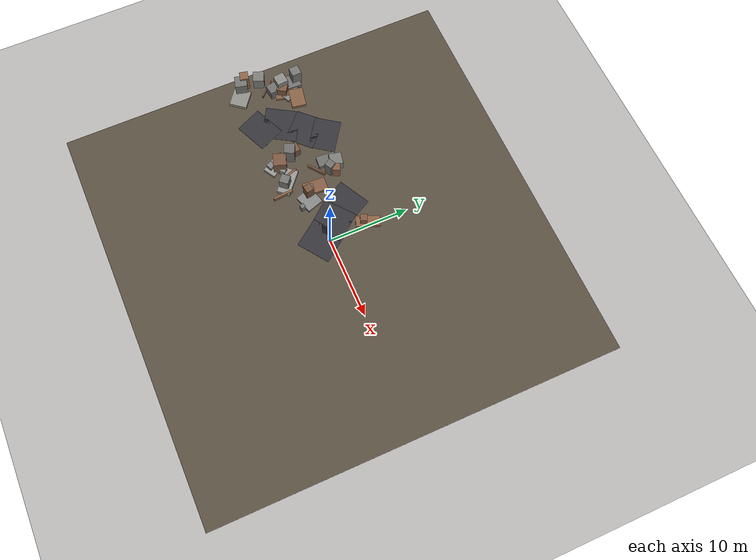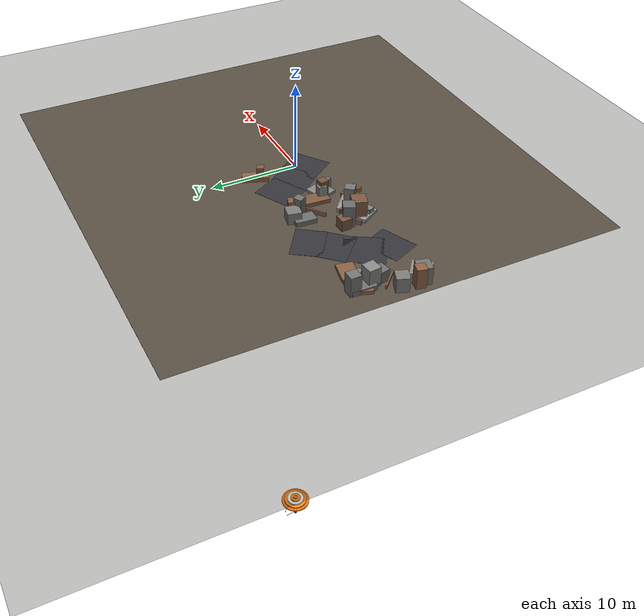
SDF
<sdf version="1.6">
 <world name="navitas_arena">
  <model name="ground_plane">
   <static>true</static>
   <link name="link">
    <collision name="collision">
     <geometry><plane><normal>0 0 1</normal><size>400 400</size></plane></geometry>
     <surface><friction><ode><mu>0.750</mu><mu2>0.750</mu2></ode></friction></surface>
    </collision>
    <visual name="visual">
     <cast_shadows>false</cast_shadows>
     <geometry><plane><normal>0 0 1</normal><size>400 400</size></plane></geometry>
     <material><ambient>0.150 0.140 0.130 1</ambient><diffuse>0.150 0.140 0.130 1</diffuse></material>
    </visual>
   </link>
  </model>
  <model name="gd_orta">
   <static>true</static>
   <pose>0.000 0.000 0.010 0 0 0.000</pose>
   <link name="link">
    <collision name="col"><geometry><box><size>50.000 50.000 0.020</size></box></geometry></collision>
    <visual name="vis">
     <geometry><box><size>50.000 50.000 0.020</size></box></geometry>
     <material><ambient>0.34 0.30 0.25 1</ambient><diffuse>0.34 0.30 0.25 1</diffuse></material>
    </visual>
   </link>
  </model>
  <model name="road_orta_1_14">
   <static>true</static>
   <pose>-17.144 -2.167 0.040 0 0 1.992</pose>
   <link name="link">
    <collision name="col"><geometry><box><size>3.456 4.250 0.020</size></box></geometry></collision>
    <visual name="vis">
     <geometry><box><size>3.456 4.250 0.020</size></box></geometry>
     <material><ambient>0.20 0.20 0.22 1</ambient><diffuse>0.20 0.20 0.22 1</diffuse></material>
    </visual>
   </link>
  </model>
  <model name="road_orta_1_15">
   <static>true</static>
   <pose>-16.786 0.500 0.040 0 0 1.040</pose>
   <link name="link">
    <collision name="col"><geometry><box><size>4.378 4.250 0.020</size></box></geometry></collision>
    <visual name="vis">
     <geometry><box><size>4.378 4.250 0.020</size></box></geometry>
     <material><ambient>0.20 0.20 0.22 1</ambient><diffuse>0.20 0.20 0.22 1</diffuse></material>
    </visual>
   </link>
  </model>
  <model name="road_orta_1_16">
   <static>true</static>
   <pose>-14.947 3.000 0.040 0 0 0.806</pose>
   <link name="link">
    <collision name="col"><geometry><box><size>3.672 4.250 0.020</size></box></geometry></collision>
    <visual name="vis">
     <geometry><box><size>3.672 4.250 0.020</size></box></geometry>
     <material><ambient>0.20 0.20 0.22 1</ambient><diffuse>0.20 0.20 0.22 1</diffuse></material>
    </visual>
   </link>
  </model>
  <model name="road_orta_1_17">
   <static>true</static>
   <pose>-13.290 5.000 0.040 0 0 0.962</pose>
   <link name="link">
    <collision name="col"><geometry><box><size>3.337 4.250 0.020</size></box></geometry></collision>
    <visual name="vis">
     <geometry><box><size>3.337 4.250 0.020</size></box></geometry>
     <material><ambient>0.20 0.20 0.22 1</ambient><diffuse>0.20 0.20 0.22 1</diffuse></material>
    </visual>
   </link>
  </model>
  <model name="road_orta_2_9">
   <static>true</static>
   <pose>-0.436 -1.000 0.040 0 0 2.198</pose>
   <link name="link">
    <collision name="col"><geometry><box><size>3.782 4.250 0.020</size></box></geometry></collision>
    <visual name="vis">
     <geometry><box><size>3.782 4.250 0.020</size></box></geometry>
     <material><ambient>0.20 0.20 0.22 1</ambient><diffuse>0.20 0.20 0.22 1</diffuse></material>
    </visual>
   </link>
  </model>
  <model name="road_orta_2_10">
   <static>true</static>
   <pose>-2.240 1.333 0.040 0 0 2.258</pose>
   <link name="link">
    <collision name="col"><geometry><box><size>3.919 4.250 0.020</size></box></geometry></collision>
    <visual name="vis">
     <geometry><box><size>3.919 4.250 0.020</size></box></geometry>
     <material><ambient>0.20 0.20 0.22 1</ambient><diffuse>0.20 0.20 0.22 1</diffuse></material>
    </visual>
   </link>
  </model>
  <model name="road_orta_2_11">
   <static>true</static>
   <pose>-3.825 3.667 0.040 0 0 2.064</pose>
   <link name="link">
    <collision name="col"><geometry><box><size>3.549 4.250 0.020</size></box></geometry></collision>
    <visual name="vis">
     <geometry><box><size>3.549 4.250 0.020</size></box></geometry>
     <material><ambient>0.20 0.20 0.22 1</ambient><diffuse>0.20 0.20 0.22 1</diffuse></material>
    </visual>
   </link>
  </model>
  <model name="deb_orta_5">
   <static>true</static>
   <pose>-22.137 -2.837 0.236 0 0 2.482</pose>
   <link name="link">
    <collision name="col"><geometry><box><size>2.312 2.183 0.472</size></box></geometry></collision>
    <visual name="vis">
     <geometry><box><size>2.312 2.183 0.472</size></box></geometry>
     <material><ambient>0.54 0.54 0.52 1</ambient><diffuse>0.54 0.54 0.52 1</diffuse></material>
    </visual>
   </link>
  </model>
  <model name="deb_orta_13">
   <static>true</static>
   <pose>-23.464 0.221 0.840 0 0 1.223</pose>
   <link name="link">
    <collision name="col"><geometry><box><size>1.376 1.376 1.679</size></box></geometry></collision>
    <visual name="vis">
     <geometry><box><size>1.376 1.376 1.679</size></box></geometry>
     <material><ambient>0.47 0.47 0.46 1</ambient><diffuse>0.47 0.47 0.46 1</diffuse></material>
    </visual>
   </link>
  </model>
  <model name="deb_orta_15">
   <static>true</static>
   <pose>-21.774 3.699 0.298 0 0 1.542</pose>
   <link name="link">
    <collision name="col"><geometry><box><size>2.696 1.844 0.597</size></box></geometry></collision>
    <visual name="vis">
     <geometry><box><size>2.696 1.844 0.597</size></box></geometry>
     <material><ambient>0.43 0.43 0.43 1</ambient><diffuse>0.43 0.43 0.43 1</diffuse></material>
    </visual>
   </link>
  </model>
  <model name="deb_orta_22">
   <static>true</static>
   <pose>-12.104 -0.181 1.240 0 0 1.145</pose>
   <link name="link">
    <collision name="col"><geometry><box><size>1.293 1.293 2.480</size></box></geometry></collision>
    <visual name="vis">
     <geometry><box><size>1.293 1.293 2.480</size></box></geometry>
     <material><ambient>0.41 0.41 0.40 1</ambient><diffuse>0.41 0.41 0.40 1</diffuse></material>
    </visual>
   </link>
  </model>
  <model name="deb_orta_24">
   <static>true</static>
   <pose>-23.400 -2.149 1.035 0 0 2.879</pose>
   <link name="link">
    <collision name="col"><geometry><box><size>1.496 1.496 2.069</size></box></geometry></collision>
    <visual name="vis">
     <geometry><box><size>1.496 1.496 2.069</size></box></geometry>
     <material><ambient>0.44 0.44 0.43 1</ambient><diffuse>0.44 0.44 0.43 1</diffuse></material>
    </visual>
   </link>
  </model>
  <model name="deb_orta_27">
   <static>true</static>
   <pose>-11.625 -2.870 0.459 0 0 0.429</pose>
   <link name="link">
    <collision name="col"><geometry><box><size>0.763 0.763 0.918</size></box></geometry></collision>
    <visual name="vis">
     <geometry><box><size>0.763 0.763 0.918</size></box></geometry>
     <material><ambient>0.49 0.49 0.48 1</ambient><diffuse>0.49 0.49 0.48 1</diffuse></material>
    </visual>
   </link>
  </model>
  <model name="deb_orta_36">
   <static>true</static>
   <pose>-19.397 3.827 0.227 0 0 2.953</pose>
   <link name="link">
    <collision name="col"><geometry><box><size>2.503 1.797 0.453</size></box></geometry></collision>
    <visual name="vis">
     <geometry><box><size>2.503 1.797 0.453</size></box></geometry>
     <material><ambient>0.52 0.37 0.26 1</ambient><diffuse>0.52 0.37 0.26 1</diffuse></material>
    </visual>
   </link>
  </model>
  <model name="deb_orta_41">
   <static>true</static>
   <pose>-0.358 5.063 0.259 0 0 1.212</pose>
   <link name="link">
    <collision name="col"><geometry><box><size>2.947 1.291 0.519</size></box></geometry></collision>
    <visual name="vis">
     <geometry><box><size>2.947 1.291 0.519</size></box></geometry>
     <material><ambient>0.52 0.37 0.26 1</ambient><diffuse>0.52 0.37 0.26 1</diffuse></material>
    </visual>
   </link>
  </model>
  <model name="deb_orta_43">
   <static>true</static>
   <pose>-11.558 -2.389 0.199 0 0 2.107</pose>
   <link name="link">
    <collision name="col"><geometry><box><size>2.421 1.606 0.398</size></box></geometry></collision>
    <visual name="vis">
     <geometry><box><size>2.421 1.606 0.398</size></box></geometry>
     <material><ambient>0.57 0.57 0.56 1</ambient><diffuse>0.57 0.57 0.56 1</diffuse></material>
    </visual>
   </link>
  </model>
  <model name="deb_orta_57">
   <static>true</static>
   <pose>-12.312 -0.735 0.257 0 0 0.644</pose>
   <link name="link">
    <collision name="col"><geometry><box><size>1.704 0.160 0.514</size></box></geometry></collision>
    <visual name="vis">
     <geometry><box><size>1.704 0.160 0.514</size></box></geometry>
     <material><ambient>0.54 0.38 0.27 1</ambient><diffuse>0.54 0.38 0.27 1</diffuse></material>
    </visual>
   </link>
  </model>
  <model name="deb_orta_62">
   <static>true</static>
   <pose>-9.809 3.743 0.279 0 0 1.507</pose>
   <link name="link">
    <collision name="col"><geometry><box><size>2.340 1.439 0.559</size></box></geometry></collision>
    <visual name="vis">
     <geometry><box><size>2.340 1.439 0.559</size></box></geometry>
     <material><ambient>0.42 0.42 0.41 1</ambient><diffuse>0.42 0.42 0.41 1</diffuse></material>
    </visual>
   </link>
  </model>
  <model name="deb_orta_67">
   <static>true</static>
   <pose>-20.811 3.122 0.182 0 0 2.029</pose>
   <link name="link">
    <collision name="col"><geometry><box><size>2.181 2.175 0.364</size></box></geometry></collision>
    <visual name="vis">
     <geometry><box><size>2.181 2.175 0.364</size></box></geometry>
     <material><ambient>0.50 0.50 0.49 1</ambient><diffuse>0.50 0.50 0.49 1</diffuse></material>
    </visual>
   </link>
  </model>
  <model name="deb_orta_93">
   <static>true</static>
   <pose>-7.925 4.222 0.837 0 0 2.783</pose>
   <link name="link">
    <collision name="col"><geometry><box><size>0.923 0.923 1.674</size></box></geometry></collision>
    <visual name="vis">
     <geometry><box><size>0.923 0.923 1.674</size></box></geometry>
     <material><ambient>0.52 0.36 0.26 1</ambient><diffuse>0.52 0.36 0.26 1</diffuse></material>
    </visual>
   </link>
  </model>
  <model name="deb_orta_95">
   <static>true</static>
   <pose>-20.998 2.484 0.743 0 0 0.968</pose>
   <link name="link">
    <collision name="col"><geometry><box><size>1.255 1.255 1.485</size></box></geometry></collision>
    <visual name="vis">
     <geometry><box><size>1.255 1.255 1.485</size></box></geometry>
     <material><ambient>0.47 0.33 0.24 1</ambient><diffuse>0.47 0.33 0.24 1</diffuse></material>
    </visual>
   </link>
  </model>
  <model name="deb_orta_99">
   <static>true</static>
   <pose>-23.545 -2.237 0.336 0 0 1.798</pose>
   <link name="link">
    <collision name="col"><geometry><box><size>0.441 0.441 0.673</size></box></geometry></collision>
    <visual name="vis">
     <geometry><box><size>0.441 0.441 0.673</size></box></geometry>
     <material><ambient>0.45 0.45 0.45 1</ambient><diffuse>0.45 0.45 0.45 1</diffuse></material>
    </visual>
   </link>
  </model>
  <model name="deb_orta_104">
   <static>true</static>
   <pose>-9.770 -1.344 0.269 0 0 1.873</pose>
   <link name="link">
    <collision name="col"><geometry><box><size>2.380 0.257 0.538</size></box></geometry></collision>
    <visual name="vis">
     <geometry><box><size>2.380 0.257 0.538</size></box></geometry>
     <material><ambient>0.51 0.36 0.26 1</ambient><diffuse>0.51 0.36 0.26 1</diffuse></material>
    </visual>
   </link>
  </model>
  <model name="deb_orta_105">
   <static>true</static>
   <pose>-11.310 -1.786 1.100 0 0 1.247</pose>
   <link name="link">
    <collision name="col"><geometry><box><size>1.593 1.593 2.200</size></box></geometry></collision>
    <visual name="vis">
     <geometry><box><size>1.593 1.593 2.200</size></box></geometry>
     <material><ambient>0.47 0.33 0.24 1</ambient><diffuse>0.47 0.33 0.24 1</diffuse></material>
    </visual>
   </link>
  </model>
  <model name="deb_orta_121">
   <static>true</static>
   <pose>-21.663 2.563 1.122 0 0 1.683</pose>
   <link name="link">
    <collision name="col"><geometry><box><size>1.354 1.354 2.245</size></box></geometry></collision>
    <visual name="vis">
     <geometry><box><size>1.354 1.354 2.245</size></box></geometry>
     <material><ambient>0.53 0.53 0.52 1</ambient><diffuse>0.53 0.53 0.52 1</diffuse></material>
    </visual>
   </link>
  </model>
  <model name="deb_orta_123">
   <static>true</static>
   <pose>-22.018 4.688 1.142 0 0 0.030</pose>
   <link name="link">
    <collision name="col"><geometry><box><size>1.197 1.197 2.284</size></box></geometry></collision>
    <visual name="vis">
     <geometry><box><size>1.197 1.197 2.284</size></box></geometry>
     <material><ambient>0.45 0.45 0.44 1</ambient><diffuse>0.45 0.45 0.44 1</diffuse></material>
    </visual>
   </link>
  </model>
  <model name="deb_orta_134">
   <static>true</static>
   <pose>-10.468 -1.726 0.483 0 0 0.741</pose>
   <link name="link">
    <collision name="col"><geometry><box><size>0.683 0.683 0.965</size></box></geometry></collision>
    <visual name="vis">
     <geometry><box><size>0.683 0.683 0.965</size></box></geometry>
     <material><ambient>0.54 0.54 0.53 1</ambient><diffuse>0.54 0.54 0.53 1</diffuse></material>
    </visual>
   </link>
  </model>
  <model name="deb_orta_137">
   <static>true</static>
   <pose>-7.563 -2.945 0.288 0 0 1.634</pose>
   <link name="link">
    <collision name="col"><geometry><box><size>2.497 0.280 0.577</size></box></geometry></collision>
    <visual name="vis">
     <geometry><box><size>2.497 0.280 0.577</size></box></geometry>
     <material><ambient>0.53 0.37 0.27 1</ambient><diffuse>0.53 0.37 0.27 1</diffuse></material>
    </visual>
   </link>
  </model>
  <model name="deb_orta_138">
   <static>true</static>
   <pose>-12.509 0.532 0.650 0 0 1.613</pose>
   <link name="link">
    <collision name="col"><geometry><box><size>1.209 1.209 1.299</size></box></geometry></collision>
    <visual name="vis">
     <geometry><box><size>1.209 1.209 1.299</size></box></geometry>
     <material><ambient>0.47 0.33 0.24 1</ambient><diffuse>0.47 0.33 0.24 1</diffuse></material>
    </visual>
   </link>
  </model>
  <model name="deb_orta_139">
   <static>true</static>
   <pose>-5.040 -1.433 0.503 0 0 1.794</pose>
   <link name="link">
    <collision name="col"><geometry><box><size>0.518 0.518 1.007</size></box></geometry></collision>
    <visual name="vis">
     <geometry><box><size>0.518 0.518 1.007</size></box></geometry>
     <material><ambient>0.45 0.45 0.44 1</ambient><diffuse>0.45 0.45 0.44 1</diffuse></material>
    </visual>
   </link>
  </model>
  <model name="deb_orta_149">
   <static>true</static>
   <pose>-9.026 -1.750 0.241 0 0 2.423</pose>
   <link name="link">
    <collision name="col"><geometry><box><size>3.344 1.619 0.482</size></box></geometry></collision>
    <visual name="vis">
     <geometry><box><size>3.344 1.619 0.482</size></box></geometry>
     <material><ambient>0.57 0.57 0.56 1</ambient><diffuse>0.57 0.57 0.56 1</diffuse></material>
    </visual>
   </link>
  </model>
  <model name="deb_orta_150">
   <static>true</static>
   <pose>-21.538 3.255 0.222 0 0 2.822</pose>
   <link name="link">
    <collision name="col"><geometry><box><size>2.801 1.538 0.443</size></box></geometry></collision>
    <visual name="vis">
     <geometry><box><size>2.801 1.538 0.443</size></box></geometry>
     <material><ambient>0.53 0.37 0.27 1</ambient><diffuse>0.53 0.37 0.27 1</diffuse></material>
    </visual>
   </link>
  </model>
  <model name="deb_orta_157">
   <static>true</static>
   <pose>-21.384 1.374 0.671 0 0 0.182</pose>
   <link name="link">
    <collision name="col"><geometry><box><size>1.304 1.304 1.342</size></box></geometry></collision>
    <visual name="vis">
     <geometry><box><size>1.304 1.304 1.342</size></box></geometry>
     <material><ambient>0.42 0.42 0.41 1</ambient><diffuse>0.42 0.42 0.41 1</diffuse></material>
    </visual>
   </link>
  </model>
  <model name="deb_orta_163">
   <static>true</static>
   <pose>-7.041 1.059 0.243 0 0 1.513</pose>
   <link name="link">
    <collision name="col"><geometry><box><size>2.837 1.630 0.486</size></box></geometry></collision>
    <visual name="vis">
     <geometry><box><size>2.837 1.630 0.486</size></box></geometry>
     <material><ambient>0.50 0.35 0.25 1</ambient><diffuse>0.50 0.35 0.25 1</diffuse></material>
    </visual>
   </link>
  </model>
  <model name="deb_orta_164">
   <static>true</static>
   <pose>-8.753 -2.151 1.000 0 0 2.433</pose>
   <link name="link">
    <collision name="col"><geometry><box><size>1.116 1.116 2.000</size></box></geometry></collision>
    <visual name="vis">
     <geometry><box><size>1.116 1.116 2.000</size></box></geometry>
     <material><ambient>0.44 0.44 0.43 1</ambient><diffuse>0.44 0.44 0.43 1</diffuse></material>
    </visual>
   </link>
  </model>
  <model name="deb_orta_170">
   <static>true</static>
   <pose>-22.117 0.748 0.217 0 0 2.345</pose>
   <link name="link">
    <collision name="col"><geometry><box><size>2.490 0.156 0.434</size></box></geometry></collision>
    <visual name="vis">
     <geometry><box><size>2.490 0.156 0.434</size></box></geometry>
     <material><ambient>0.53 0.37 0.27 1</ambient><diffuse>0.53 0.37 0.27 1</diffuse></material>
    </visual>
   </link>
  </model>
  <model name="deb_orta_183">
   <static>true</static>
   <pose>-8.397 3.617 1.055 0 0 0.506</pose>
   <link name="link">
    <collision name="col"><geometry><box><size>0.934 0.934 2.109</size></box></geometry></collision>
    <visual name="vis">
     <geometry><box><size>0.934 0.934 2.109</size></box></geometry>
     <material><ambient>0.43 0.43 0.42 1</ambient><diffuse>0.43 0.43 0.42 1</diffuse></material>
    </visual>
   </link>
  </model>
  <model name="deb_orta_203">
   <static>true</static>
   <pose>-23.879 -1.514 1.159 0 0 2.923</pose>
   <link name="link">
    <collision name="col"><geometry><box><size>1.071 1.071 2.317</size></box></geometry></collision>
    <visual name="vis">
     <geometry><box><size>1.071 1.071 2.317</size></box></geometry>
     <material><ambient>0.54 0.38 0.27 1</ambient><diffuse>0.54 0.38 0.27 1</diffuse></material>
    </visual>
   </link>
  </model>
  <model name="deb_orta_218">
   <static>true</static>
   <pose>-9.094 2.102 0.251 0 0 0.679</pose>
   <link name="link">
    <collision name="col"><geometry><box><size>2.425 0.217 0.502</size></box></geometry></collision>
    <visual name="vis">
     <geometry><box><size>2.425 0.217 0.502</size></box></geometry>
     <material><ambient>0.50 0.35 0.25 1</ambient><diffuse>0.50 0.35 0.25 1</diffuse></material>
    </visual>
   </link>
  </model>
  <model name="deb_orta_219">
   <static>true</static>
   <pose>-5.775 -0.229 0.175 0 0 0.307</pose>
   <link name="link">
    <collision name="col"><geometry><box><size>2.304 2.135 0.349</size></box></geometry></collision>
    <visual name="vis">
     <geometry><box><size>2.304 2.135 0.349</size></box></geometry>
     <material><ambient>0.51 0.51 0.50 1</ambient><diffuse>0.51 0.51 0.50 1</diffuse></material>
    </visual>
   </link>
  </model>
  <model name="deb_orta_223">
   <static>true</static>
   <pose>-20.981 2.672 0.173 0 0 1.319</pose>
   <link name="link">
    <collision name="col"><geometry><box><size>2.311 2.180 0.346</size></box></geometry></collision>
    <visual name="vis">
     <geometry><box><size>2.311 2.180 0.346</size></box></geometry>
     <material><ambient>0.51 0.36 0.26 1</ambient><diffuse>0.51 0.36 0.26 1</diffuse></material>
    </visual>
   </link>
  </model>
  <model name="deb_orta_244">
   <static>true</static>
   <pose>-9.086 4.678 0.661 0 0 2.953</pose>
   <link name="link">
    <collision name="col"><geometry><box><size>1.524 1.524 1.322</size></box></geometry></collision>
    <visual name="vis">
     <geometry><box><size>1.524 1.524 1.322</size></box></geometry>
     <material><ambient>0.47 0.47 0.46 1</ambient><diffuse>0.47 0.47 0.46 1</diffuse></material>
    </visual>
   </link>
  </model>
  <model name="deb_orta_250">
   <static>true</static>
   <pose>-6.480 -0.025 1.034 0 0 1.709</pose>
   <link name="link">
    <collision name="col"><geometry><box><size>0.932 0.932 2.069</size></box></geometry></collision>
    <visual name="vis">
     <geometry><box><size>0.932 0.932 2.069</size></box></geometry>
     <material><ambient>0.45 0.32 0.23 1</ambient><diffuse>0.45 0.32 0.23 1</diffuse></material>
    </visual>
   </link>
  </model>
  <model name="deb_orta_251">
   <static>true</static>
   <pose>-21.639 3.868 0.161 0 0 0.801</pose>
   <link name="link">
    <collision name="col"><geometry><box><size>2.119 1.049 0.321</size></box></geometry></collision>
    <visual name="vis">
     <geometry><box><size>2.119 1.049 0.321</size></box></geometry>
     <material><ambient>0.41 0.41 0.40 1</ambient><diffuse>0.41 0.41 0.40 1</diffuse></material>
    </visual>
   </link>
  </model>
  <model name="chic_orta_4">
   <static>true</static>
   <pose>-6.668 0.166 0.800 0 0 1.446</pose>
   <link name="link">
    <collision name="col"><geometry><box><size>0.953 0.953 1.600</size></box></geometry></collision>
    <visual name="vis">
     <geometry><box><size>0.953 0.953 1.600</size></box></geometry>
     <material><ambient>0.51 0.51 0.50 1</ambient><diffuse>0.51 0.51 0.50 1</diffuse></material>
    </visual>
   </link>
  </model>
  <model name="chic_orta_5">
   <static>true</static>
   <pose>-0.576 4.572 0.800 0 0 1.193</pose>
   <link name="link">
    <collision name="col"><geometry><box><size>0.806 0.806 1.600</size></box></geometry></collision>
    <visual name="vis">
     <geometry><box><size>0.806 0.806 1.600</size></box></geometry>
     <material><ambient>0.48 0.34 0.24 1</ambient><diffuse>0.48 0.34 0.24 1</diffuse></material>
    </visual>
   </link>
  </model>
  <model name="parachute">
   <static>true</static>
   <pose>0 0 -60 0 0 0</pose>
   <link name="link">
    <visual name="dome0">
     <geometry><cylinder><radius>2.10</radius><length>0.16</length></cylinder></geometry>
     <material><ambient>0.95 0.45 0.05 1</ambient><diffuse>0.95 0.45 0.05 1</diffuse></material>
    </visual>
    <visual name="dome1">
     <pose>0 0 0.22 0 0 0</pose>
     <geometry><cylinder><radius>1.70</radius><length>0.16</length></cylinder></geometry>
     <material><ambient>1.0 0.55 0.08 1</ambient><diffuse>1.0 0.55 0.08 1</diffuse></material>
    </visual>
    <visual name="dome2">
     <pose>0 0 0.42 0 0 0</pose>
     <geometry><cylinder><radius>1.25</radius><length>0.16</length></cylinder></geometry>
     <material><ambient>0.95 0.95 0.95 1</ambient><diffuse>0.95 0.95 0.95 1</diffuse></material>
    </visual>
    <visual name="dome3">
     <pose>0 0 0.58 0 0 0</pose>
     <geometry><cylinder><radius>0.75</radius><length>0.16</length></cylinder></geometry>
     <material><ambient>1.0 0.55 0.08 1</ambient><diffuse>1.0 0.55 0.08 1</diffuse></material>
    </visual>
    <visual name="dome4">
     <pose>0 0 0.70 0 0 0</pose>
     <geometry><cylinder><radius>0.32</radius><length>0.16</length></cylinder></geometry>
     <material><ambient>0.95 0.45 0.05 1</ambient><diffuse>0.95 0.45 0.05 1</diffuse></material>
    </visual>
    <visual name="line0">
     <pose>0.90 0.90 -1.5 0.500 0.500 0</pose>
     <geometry><cylinder><radius>0.02</radius><length>3.0</length></cylinder></geometry>
     <material><ambient>0.1 0.1 0.1 1</ambient><diffuse>0.15 0.15 0.15 1</diffuse></material>
    </visual>
    <visual name="line1">
     <pose>0.90 -0.90 -1.5 -0.500 0.500 0</pose>
     <geometry><cylinder><radius>0.02</radius><length>3.0</length></cylinder></geometry>
     <material><ambient>0.1 0.1 0.1 1</ambient><diffuse>0.15 0.15 0.15 1</diffuse></material>
    </visual>
    <visual name="line2">
     <pose>-0.90 0.90 -1.5 0.500 -0.500 0</pose>
     <geometry><cylinder><radius>0.02</radius><length>3.0</length></cylinder></geometry>
     <material><ambient>0.1 0.1 0.1 1</ambient><diffuse>0.15 0.15 0.15 1</diffuse></material>
    </visual>
    <visual name="line3">
     <pose>-0.90 -0.90 -1.5 -0.500 -0.500 0</pose>
     <geometry><cylinder><radius>0.02</radius><length>3.0</length></cylinder></geometry>
     <material><ambient>0.1 0.1 0.1 1</ambient><diffuse>0.15 0.15 0.15 1</diffuse></material>
    </visual>
    <visual name="harness">
     <pose>0 0 -3.0 0 0 0</pose>
     <geometry><box><size>0.3 0.3 0.2</size></box></geometry>
     <material><ambient>0.2 0.2 0.2 1</ambient><diffuse>0.25 0.25 0.25 1</diffuse></material>
    </visual>
   </link>
  </model>
 </world>
</sdf>
